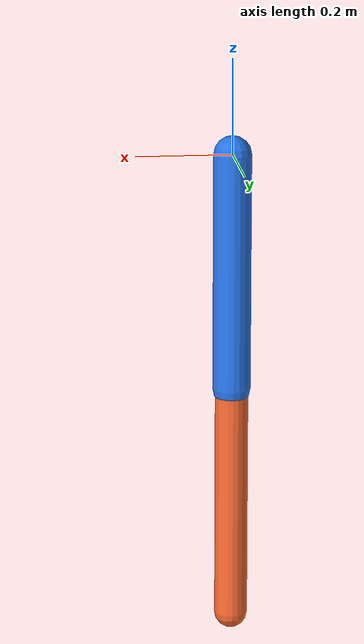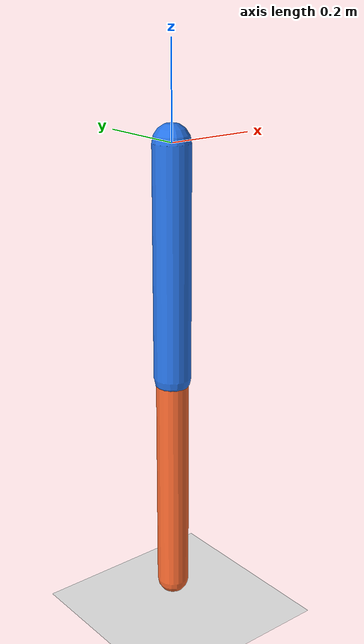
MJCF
<mujoco model="acrobot">
  <compiler angle="radian" inertiafromgeom="false"/>
  <option timestep="0.01" gravity="0 0 -9.81"/>

  <visual>
    <global azimuth="135" elevation="-20" offwidth="1920" offheight="1080"/>
    <headlight ambient="0.35 0.35 0.35" diffuse="0.75 0.75 0.75" specular="0.2 0.2 0.2"/>
    <rgba haze="1 1 1 1"/>
  </visual>

  <asset>
    <texture name="white_sky" type="skybox" builtin="flat" rgb1="1 1 1" rgb2="1 1 1" width="32" height="32"/>
    <material name="ground" rgba="1 1 1 1" reflectance="0.15"/>
    <material name="link1" rgba="0.15 0.45 0.9 1"/>
    <material name="link2" rgba="0.95 0.4 0.18 1"/>
  </asset>

  <worldbody>
    <light pos="1.5 -1.5 3.0" dir="-0.3 0.3 -1"/>
    <geom name="floor" type="plane" size="2 2 0.1" pos="0 0 -1.15" material="ground"/>
    <camera name="side" pos="2.2 -2.2 0.8" xyaxes="0.707 0.707 0 -0.19 0.19 0.96"/>

    <body name="link1_body" pos="0 0 0">
      <inertial pos="0 0 -0.25" mass="1" diaginertia="0.0208333333 0.0208333333 0.000001"/>
      <joint name="shoulder" type="hinge" axis="0 -1 0" damping="0"/>
      <geom name="link1_geom" type="capsule" fromto="0 0 0 0 0 -0.5" size="0.04" material="link1"/>
      <site name="elbow" pos="0 0 -0.5" size="0.02" rgba="0.9 0.9 0.9 1"/>

      <body name="link2_body" pos="0 0 -0.5">
        <inertial pos="0 0 -0.25" mass="1" diaginertia="0.0208333333 0.0208333333 0.000001"/>
        <joint name="elbow_joint" type="hinge" axis="0 -1 0" damping="0"/>
        <geom name="link2_geom" type="capsule" fromto="0 0 0 0 0 -0.5" size="0.035" material="link2"/>
        <site name="tip" pos="0 0 -0.5" size="0.02" rgba="0.9 0.9 0.9 1"/>
      </body>
    </body>
  </worldbody>

  <actuator>
    <motor name="elbow_motor" joint="elbow_joint" gear="1"/>
  </actuator>
</mujoco>
